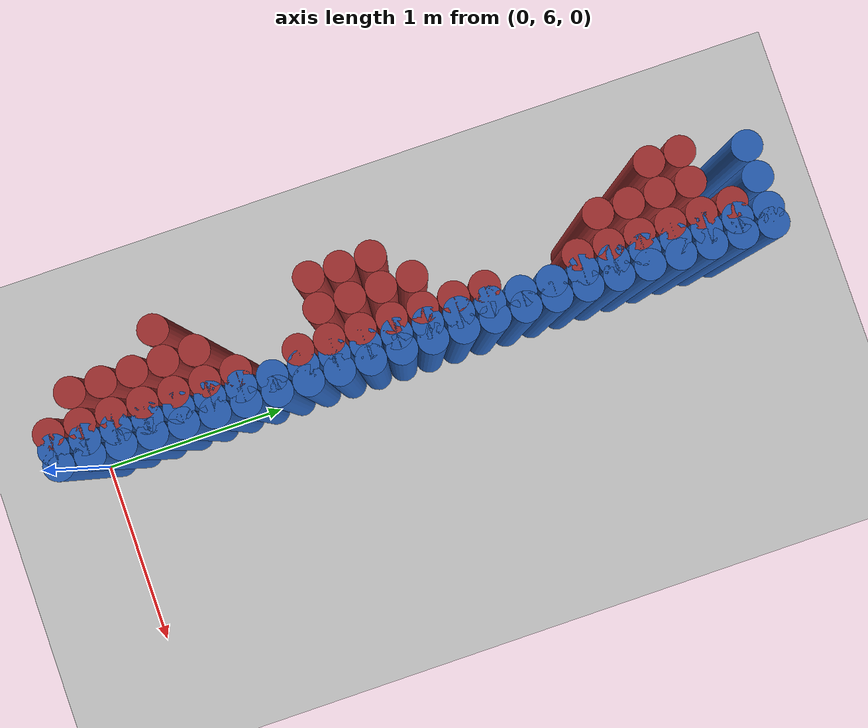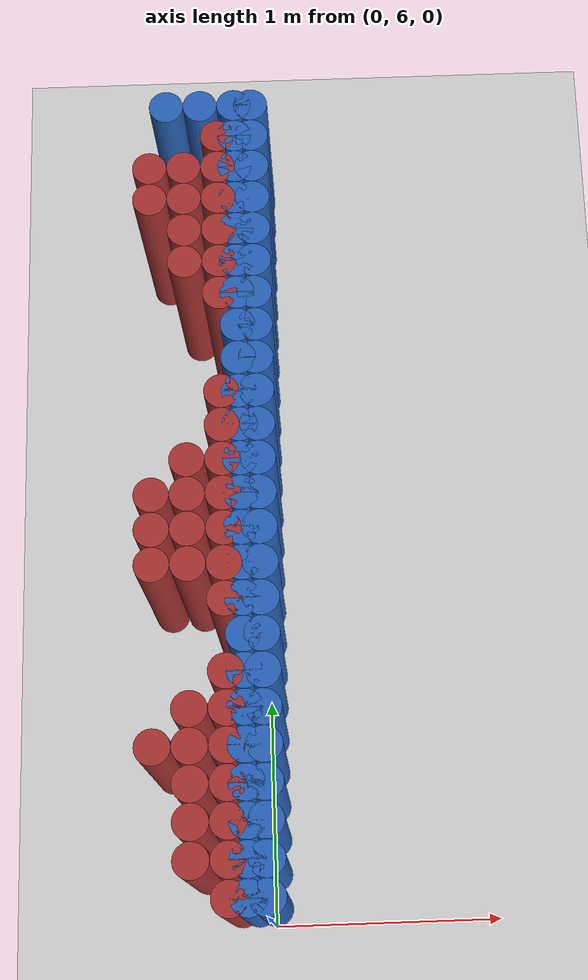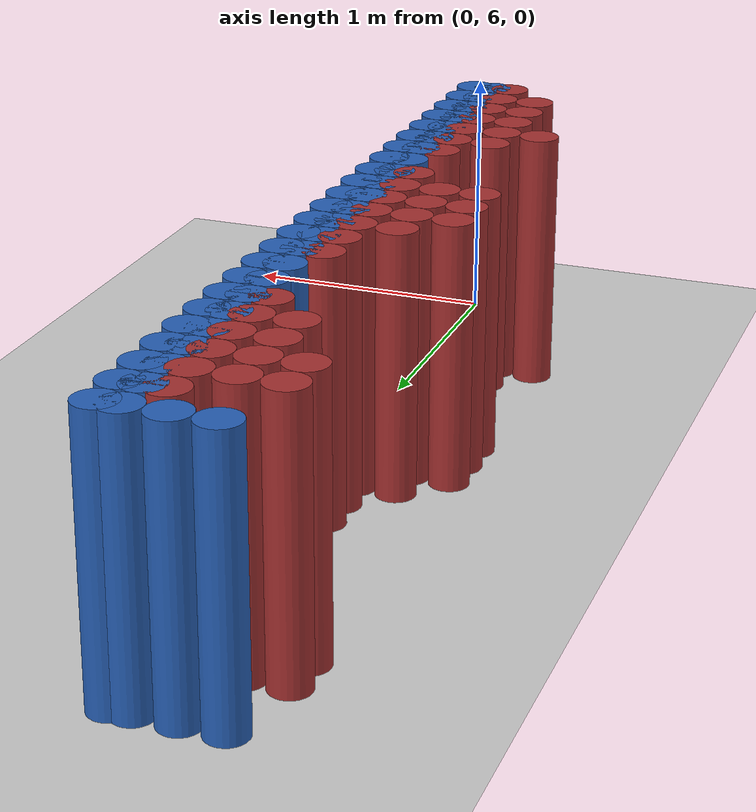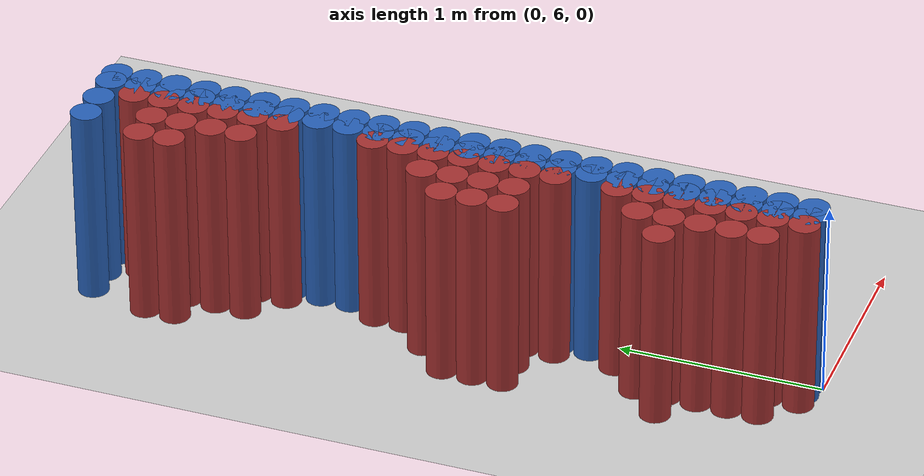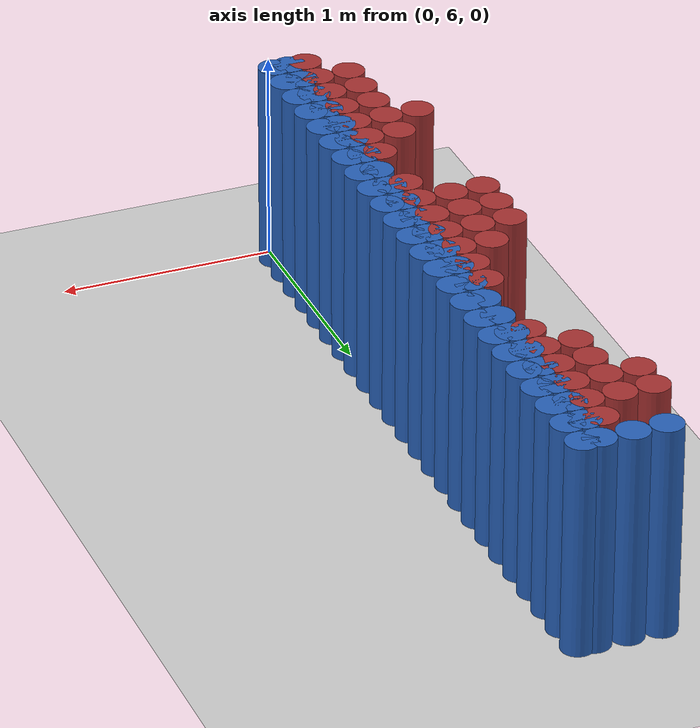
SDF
<sdf version="1.6">
 <world name="barn_world">
  <model name="ground_plane">
   <static>1</static>
   <link name="link">
    <collision name="collision">
     <geometry><plane><normal>0 0 1</normal><size>100 100</size></plane></geometry>
    </collision>
    <visual name="visual">
     <geometry><plane><normal>0 0 1</normal><size>100 100</size></plane></geometry>
     <material>
      <script><uri>file://media/materials/scripts/gazebo.material</uri><name>Gazebo/Grey</name></script>
     </material>
    </visual>
   </link>
  </model>
  <model name="unit_cylinder_285">
   <static>1</static>
   <pose>-0.4500 6.6750 0.5 0 0 0</pose>
   <link name="link">
    <collision name="collision">
     <geometry><cylinder><radius>0.075</radius><length>1</length></cylinder></geometry>
    </collision>
    <visual name="visual">
     <geometry><cylinder><radius>0.075</radius><length>1</length></cylinder></geometry>
     <material><ambient>0.648 0.192 0.192 1</ambient><diffuse>0.648 0.192 0.192 1</diffuse></material>
    </visual>
   </link>
  </model>
  <model name="unit_cylinder_286">
   <static>1</static>
   <pose>-0.4500 7.4250 0.5 0 0 0</pose>
   <link name="link">
    <collision name="collision">
     <geometry><cylinder><radius>0.075</radius><length>1</length></cylinder></geometry>
    </collision>
    <visual name="visual">
     <geometry><cylinder><radius>0.075</radius><length>1</length></cylinder></geometry>
     <material><ambient>0.648 0.192 0.192 1</ambient><diffuse>0.648 0.192 0.192 1</diffuse></material>
    </visual>
   </link>
  </model>
  <model name="unit_cylinder_287">
   <static>1</static>
   <pose>-0.4500 7.5750 0.5 0 0 0</pose>
   <link name="link">
    <collision name="collision">
     <geometry><cylinder><radius>0.075</radius><length>1</length></cylinder></geometry>
    </collision>
    <visual name="visual">
     <geometry><cylinder><radius>0.075</radius><length>1</length></cylinder></geometry>
     <material><ambient>0.648 0.192 0.192 1</ambient><diffuse>0.648 0.192 0.192 1</diffuse></material>
    </visual>
   </link>
  </model>
  <model name="unit_cylinder_288">
   <static>1</static>
   <pose>-0.4500 7.7250 0.5 0 0 0</pose>
   <link name="link">
    <collision name="collision">
     <geometry><cylinder><radius>0.075</radius><length>1</length></cylinder></geometry>
    </collision>
    <visual name="visual">
     <geometry><cylinder><radius>0.075</radius><length>1</length></cylinder></geometry>
     <material><ambient>0.648 0.192 0.192 1</ambient><diffuse>0.648 0.192 0.192 1</diffuse></material>
    </visual>
   </link>
  </model>
  <model name="unit_cylinder_289">
   <static>1</static>
   <pose>-0.4500 9.0750 0.5 0 0 0</pose>
   <link name="link">
    <collision name="collision">
     <geometry><cylinder><radius>0.075</radius><length>1</length></cylinder></geometry>
    </collision>
    <visual name="visual">
     <geometry><cylinder><radius>0.075</radius><length>1</length></cylinder></geometry>
     <material><ambient>0.648 0.192 0.192 1</ambient><diffuse>0.648 0.192 0.192 1</diffuse></material>
    </visual>
   </link>
  </model>
  <model name="unit_cylinder_290">
   <static>1</static>
   <pose>-0.4500 9.2250 0.5 0 0 0</pose>
   <link name="link">
    <collision name="collision">
     <geometry><cylinder><radius>0.075</radius><length>1</length></cylinder></geometry>
    </collision>
    <visual name="visual">
     <geometry><cylinder><radius>0.075</radius><length>1</length></cylinder></geometry>
     <material><ambient>0.648 0.192 0.192 1</ambient><diffuse>0.648 0.192 0.192 1</diffuse></material>
    </visual>
   </link>
  </model>
  <model name="unit_cylinder_291">
   <static>1</static>
   <pose>-0.3000 6.2250 0.5 0 0 0</pose>
   <link name="link">
    <collision name="collision">
     <geometry><cylinder><radius>0.075</radius><length>1</length></cylinder></geometry>
    </collision>
    <visual name="visual">
     <geometry><cylinder><radius>0.075</radius><length>1</length></cylinder></geometry>
     <material><ambient>0.648 0.192 0.192 1</ambient><diffuse>0.648 0.192 0.192 1</diffuse></material>
    </visual>
   </link>
  </model>
  <model name="unit_cylinder_292">
   <static>1</static>
   <pose>-0.3000 6.3750 0.5 0 0 0</pose>
   <link name="link">
    <collision name="collision">
     <geometry><cylinder><radius>0.075</radius><length>1</length></cylinder></geometry>
    </collision>
    <visual name="visual">
     <geometry><cylinder><radius>0.075</radius><length>1</length></cylinder></geometry>
     <material><ambient>0.648 0.192 0.192 1</ambient><diffuse>0.648 0.192 0.192 1</diffuse></material>
    </visual>
   </link>
  </model>
  <model name="unit_cylinder_293">
   <static>1</static>
   <pose>-0.3000 6.5250 0.5 0 0 0</pose>
   <link name="link">
    <collision name="collision">
     <geometry><cylinder><radius>0.075</radius><length>1</length></cylinder></geometry>
    </collision>
    <visual name="visual">
     <geometry><cylinder><radius>0.075</radius><length>1</length></cylinder></geometry>
     <material><ambient>0.648 0.192 0.192 1</ambient><diffuse>0.648 0.192 0.192 1</diffuse></material>
    </visual>
   </link>
  </model>
  <model name="unit_cylinder_294">
   <static>1</static>
   <pose>-0.3000 6.6750 0.5 0 0 0</pose>
   <link name="link">
    <collision name="collision">
     <geometry><cylinder><radius>0.075</radius><length>1</length></cylinder></geometry>
    </collision>
    <visual name="visual">
     <geometry><cylinder><radius>0.075</radius><length>1</length></cylinder></geometry>
     <material><ambient>0.648 0.192 0.192 1</ambient><diffuse>0.648 0.192 0.192 1</diffuse></material>
    </visual>
   </link>
  </model>
  <model name="unit_cylinder_295">
   <static>1</static>
   <pose>-0.3000 6.8250 0.5 0 0 0</pose>
   <link name="link">
    <collision name="collision">
     <geometry><cylinder><radius>0.075</radius><length>1</length></cylinder></geometry>
    </collision>
    <visual name="visual">
     <geometry><cylinder><radius>0.075</radius><length>1</length></cylinder></geometry>
     <material><ambient>0.648 0.192 0.192 1</ambient><diffuse>0.648 0.192 0.192 1</diffuse></material>
    </visual>
   </link>
  </model>
  <model name="unit_cylinder_296">
   <static>1</static>
   <pose>-0.3000 7.4250 0.5 0 0 0</pose>
   <link name="link">
    <collision name="collision">
     <geometry><cylinder><radius>0.075</radius><length>1</length></cylinder></geometry>
    </collision>
    <visual name="visual">
     <geometry><cylinder><radius>0.075</radius><length>1</length></cylinder></geometry>
     <material><ambient>0.648 0.192 0.192 1</ambient><diffuse>0.648 0.192 0.192 1</diffuse></material>
    </visual>
   </link>
  </model>
  <model name="unit_cylinder_297">
   <static>1</static>
   <pose>-0.3000 7.5750 0.5 0 0 0</pose>
   <link name="link">
    <collision name="collision">
     <geometry><cylinder><radius>0.075</radius><length>1</length></cylinder></geometry>
    </collision>
    <visual name="visual">
     <geometry><cylinder><radius>0.075</radius><length>1</length></cylinder></geometry>
     <material><ambient>0.648 0.192 0.192 1</ambient><diffuse>0.648 0.192 0.192 1</diffuse></material>
    </visual>
   </link>
  </model>
  <model name="unit_cylinder_298">
   <static>1</static>
   <pose>-0.3000 7.7250 0.5 0 0 0</pose>
   <link name="link">
    <collision name="collision">
     <geometry><cylinder><radius>0.075</radius><length>1</length></cylinder></geometry>
    </collision>
    <visual name="visual">
     <geometry><cylinder><radius>0.075</radius><length>1</length></cylinder></geometry>
     <material><ambient>0.648 0.192 0.192 1</ambient><diffuse>0.648 0.192 0.192 1</diffuse></material>
    </visual>
   </link>
  </model>
  <model name="unit_cylinder_299">
   <static>1</static>
   <pose>-0.3000 7.8750 0.5 0 0 0</pose>
   <link name="link">
    <collision name="collision">
     <geometry><cylinder><radius>0.075</radius><length>1</length></cylinder></geometry>
    </collision>
    <visual name="visual">
     <geometry><cylinder><radius>0.075</radius><length>1</length></cylinder></geometry>
     <material><ambient>0.648 0.192 0.192 1</ambient><diffuse>0.648 0.192 0.192 1</diffuse></material>
    </visual>
   </link>
  </model>
  <model name="unit_cylinder_300">
   <static>1</static>
   <pose>-0.3000 8.7750 0.5 0 0 0</pose>
   <link name="link">
    <collision name="collision">
     <geometry><cylinder><radius>0.075</radius><length>1</length></cylinder></geometry>
    </collision>
    <visual name="visual">
     <geometry><cylinder><radius>0.075</radius><length>1</length></cylinder></geometry>
     <material><ambient>0.648 0.192 0.192 1</ambient><diffuse>0.648 0.192 0.192 1</diffuse></material>
    </visual>
   </link>
  </model>
  <model name="unit_cylinder_301">
   <static>1</static>
   <pose>-0.3000 8.9250 0.5 0 0 0</pose>
   <link name="link">
    <collision name="collision">
     <geometry><cylinder><radius>0.075</radius><length>1</length></cylinder></geometry>
    </collision>
    <visual name="visual">
     <geometry><cylinder><radius>0.075</radius><length>1</length></cylinder></geometry>
     <material><ambient>0.648 0.192 0.192 1</ambient><diffuse>0.648 0.192 0.192 1</diffuse></material>
    </visual>
   </link>
  </model>
  <model name="unit_cylinder_302">
   <static>1</static>
   <pose>-0.3000 9.0750 0.5 0 0 0</pose>
   <link name="link">
    <collision name="collision">
     <geometry><cylinder><radius>0.075</radius><length>1</length></cylinder></geometry>
    </collision>
    <visual name="visual">
     <geometry><cylinder><radius>0.075</radius><length>1</length></cylinder></geometry>
     <material><ambient>0.648 0.192 0.192 1</ambient><diffuse>0.648 0.192 0.192 1</diffuse></material>
    </visual>
   </link>
  </model>
  <model name="unit_cylinder_303">
   <static>1</static>
   <pose>-0.3000 9.2250 0.5 0 0 0</pose>
   <link name="link">
    <collision name="collision">
     <geometry><cylinder><radius>0.075</radius><length>1</length></cylinder></geometry>
    </collision>
    <visual name="visual">
     <geometry><cylinder><radius>0.075</radius><length>1</length></cylinder></geometry>
     <material><ambient>0.648 0.192 0.192 1</ambient><diffuse>0.648 0.192 0.192 1</diffuse></material>
    </visual>
   </link>
  </model>
  <model name="unit_cylinder_305">
   <static>1</static>
   <pose>-0.1500 6.0750 0.5 0 0 0</pose>
   <link name="link">
    <collision name="collision">
     <geometry><cylinder><radius>0.075</radius><length>1</length></cylinder></geometry>
    </collision>
    <visual name="visual">
     <geometry><cylinder><radius>0.075</radius><length>1</length></cylinder></geometry>
     <material><ambient>0.648 0.192 0.192 1</ambient><diffuse>0.648 0.192 0.192 1</diffuse></material>
    </visual>
   </link>
  </model>
  <model name="unit_cylinder_306">
   <static>1</static>
   <pose>-0.1500 6.2250 0.5 0 0 0</pose>
   <link name="link">
    <collision name="collision">
     <geometry><cylinder><radius>0.075</radius><length>1</length></cylinder></geometry>
    </collision>
    <visual name="visual">
     <geometry><cylinder><radius>0.075</radius><length>1</length></cylinder></geometry>
     <material><ambient>0.648 0.192 0.192 1</ambient><diffuse>0.648 0.192 0.192 1</diffuse></material>
    </visual>
   </link>
  </model>
  <model name="unit_cylinder_307">
   <static>1</static>
   <pose>-0.1500 6.3750 0.5 0 0 0</pose>
   <link name="link">
    <collision name="collision">
     <geometry><cylinder><radius>0.075</radius><length>1</length></cylinder></geometry>
    </collision>
    <visual name="visual">
     <geometry><cylinder><radius>0.075</radius><length>1</length></cylinder></geometry>
     <material><ambient>0.648 0.192 0.192 1</ambient><diffuse>0.648 0.192 0.192 1</diffuse></material>
    </visual>
   </link>
  </model>
  <model name="unit_cylinder_308">
   <static>1</static>
   <pose>-0.1500 6.5250 0.5 0 0 0</pose>
   <link name="link">
    <collision name="collision">
     <geometry><cylinder><radius>0.075</radius><length>1</length></cylinder></geometry>
    </collision>
    <visual name="visual">
     <geometry><cylinder><radius>0.075</radius><length>1</length></cylinder></geometry>
     <material><ambient>0.648 0.192 0.192 1</ambient><diffuse>0.648 0.192 0.192 1</diffuse></material>
    </visual>
   </link>
  </model>
  <model name="unit_cylinder_309">
   <static>1</static>
   <pose>-0.1500 6.6750 0.5 0 0 0</pose>
   <link name="link">
    <collision name="collision">
     <geometry><cylinder><radius>0.075</radius><length>1</length></cylinder></geometry>
    </collision>
    <visual name="visual">
     <geometry><cylinder><radius>0.075</radius><length>1</length></cylinder></geometry>
     <material><ambient>0.648 0.192 0.192 1</ambient><diffuse>0.648 0.192 0.192 1</diffuse></material>
    </visual>
   </link>
  </model>
  <model name="unit_cylinder_310">
   <static>1</static>
   <pose>-0.1500 6.8250 0.5 0 0 0</pose>
   <link name="link">
    <collision name="collision">
     <geometry><cylinder><radius>0.075</radius><length>1</length></cylinder></geometry>
    </collision>
    <visual name="visual">
     <geometry><cylinder><radius>0.075</radius><length>1</length></cylinder></geometry>
     <material><ambient>0.648 0.192 0.192 1</ambient><diffuse>0.648 0.192 0.192 1</diffuse></material>
    </visual>
   </link>
  </model>
  <model name="unit_cylinder_311">
   <static>1</static>
   <pose>-0.1500 6.9750 0.5 0 0 0</pose>
   <link name="link">
    <collision name="collision">
     <geometry><cylinder><radius>0.075</radius><length>1</length></cylinder></geometry>
    </collision>
    <visual name="visual">
     <geometry><cylinder><radius>0.075</radius><length>1</length></cylinder></geometry>
     <material><ambient>0.648 0.192 0.192 1</ambient><diffuse>0.648 0.192 0.192 1</diffuse></material>
    </visual>
   </link>
  </model>
  <model name="unit_cylinder_312">
   <static>1</static>
   <pose>-0.1500 7.2750 0.5 0 0 0</pose>
   <link name="link">
    <collision name="collision">
     <geometry><cylinder><radius>0.075</radius><length>1</length></cylinder></geometry>
    </collision>
    <visual name="visual">
     <geometry><cylinder><radius>0.075</radius><length>1</length></cylinder></geometry>
     <material><ambient>0.648 0.192 0.192 1</ambient><diffuse>0.648 0.192 0.192 1</diffuse></material>
    </visual>
   </link>
  </model>
  <model name="unit_cylinder_313">
   <static>1</static>
   <pose>-0.1500 7.4250 0.5 0 0 0</pose>
   <link name="link">
    <collision name="collision">
     <geometry><cylinder><radius>0.075</radius><length>1</length></cylinder></geometry>
    </collision>
    <visual name="visual">
     <geometry><cylinder><radius>0.075</radius><length>1</length></cylinder></geometry>
     <material><ambient>0.648 0.192 0.192 1</ambient><diffuse>0.648 0.192 0.192 1</diffuse></material>
    </visual>
   </link>
  </model>
  <model name="unit_cylinder_314">
   <static>1</static>
   <pose>-0.1500 7.5750 0.5 0 0 0</pose>
   <link name="link">
    <collision name="collision">
     <geometry><cylinder><radius>0.075</radius><length>1</length></cylinder></geometry>
    </collision>
    <visual name="visual">
     <geometry><cylinder><radius>0.075</radius><length>1</length></cylinder></geometry>
     <material><ambient>0.648 0.192 0.192 1</ambient><diffuse>0.648 0.192 0.192 1</diffuse></material>
    </visual>
   </link>
  </model>
  <model name="unit_cylinder_315">
   <static>1</static>
   <pose>-0.1500 7.7250 0.5 0 0 0</pose>
   <link name="link">
    <collision name="collision">
     <geometry><cylinder><radius>0.075</radius><length>1</length></cylinder></geometry>
    </collision>
    <visual name="visual">
     <geometry><cylinder><radius>0.075</radius><length>1</length></cylinder></geometry>
     <material><ambient>0.648 0.192 0.192 1</ambient><diffuse>0.648 0.192 0.192 1</diffuse></material>
    </visual>
   </link>
  </model>
  <model name="unit_cylinder_316">
   <static>1</static>
   <pose>-0.1500 7.8750 0.5 0 0 0</pose>
   <link name="link">
    <collision name="collision">
     <geometry><cylinder><radius>0.075</radius><length>1</length></cylinder></geometry>
    </collision>
    <visual name="visual">
     <geometry><cylinder><radius>0.075</radius><length>1</length></cylinder></geometry>
     <material><ambient>0.648 0.192 0.192 1</ambient><diffuse>0.648 0.192 0.192 1</diffuse></material>
    </visual>
   </link>
  </model>
  <model name="unit_cylinder_317">
   <static>1</static>
   <pose>-0.1500 8.0250 0.5 0 0 0</pose>
   <link name="link">
    <collision name="collision">
     <geometry><cylinder><radius>0.075</radius><length>1</length></cylinder></geometry>
    </collision>
    <visual name="visual">
     <geometry><cylinder><radius>0.075</radius><length>1</length></cylinder></geometry>
     <material><ambient>0.648 0.192 0.192 1</ambient><diffuse>0.648 0.192 0.192 1</diffuse></material>
    </visual>
   </link>
  </model>
  <model name="unit_cylinder_318">
   <static>1</static>
   <pose>-0.1500 8.1750 0.5 0 0 0</pose>
   <link name="link">
    <collision name="collision">
     <geometry><cylinder><radius>0.075</radius><length>1</length></cylinder></geometry>
    </collision>
    <visual name="visual">
     <geometry><cylinder><radius>0.075</radius><length>1</length></cylinder></geometry>
     <material><ambient>0.648 0.192 0.192 1</ambient><diffuse>0.648 0.192 0.192 1</diffuse></material>
    </visual>
   </link>
  </model>
  <model name="unit_cylinder_319">
   <static>1</static>
   <pose>-0.1500 8.6250 0.5 0 0 0</pose>
   <link name="link">
    <collision name="collision">
     <geometry><cylinder><radius>0.075</radius><length>1</length></cylinder></geometry>
    </collision>
    <visual name="visual">
     <geometry><cylinder><radius>0.075</radius><length>1</length></cylinder></geometry>
     <material><ambient>0.648 0.192 0.192 1</ambient><diffuse>0.648 0.192 0.192 1</diffuse></material>
    </visual>
   </link>
  </model>
  <model name="unit_cylinder_320">
   <static>1</static>
   <pose>-0.1500 8.7750 0.5 0 0 0</pose>
   <link name="link">
    <collision name="collision">
     <geometry><cylinder><radius>0.075</radius><length>1</length></cylinder></geometry>
    </collision>
    <visual name="visual">
     <geometry><cylinder><radius>0.075</radius><length>1</length></cylinder></geometry>
     <material><ambient>0.648 0.192 0.192 1</ambient><diffuse>0.648 0.192 0.192 1</diffuse></material>
    </visual>
   </link>
  </model>
  <model name="unit_cylinder_321">
   <static>1</static>
   <pose>-0.1500 8.9250 0.5 0 0 0</pose>
   <link name="link">
    <collision name="collision">
     <geometry><cylinder><radius>0.075</radius><length>1</length></cylinder></geometry>
    </collision>
    <visual name="visual">
     <geometry><cylinder><radius>0.075</radius><length>1</length></cylinder></geometry>
     <material><ambient>0.648 0.192 0.192 1</ambient><diffuse>0.648 0.192 0.192 1</diffuse></material>
    </visual>
   </link>
  </model>
  <model name="unit_cylinder_322">
   <static>1</static>
   <pose>-0.1500 9.0750 0.5 0 0 0</pose>
   <link name="link">
    <collision name="collision">
     <geometry><cylinder><radius>0.075</radius><length>1</length></cylinder></geometry>
    </collision>
    <visual name="visual">
     <geometry><cylinder><radius>0.075</radius><length>1</length></cylinder></geometry>
     <material><ambient>0.648 0.192 0.192 1</ambient><diffuse>0.648 0.192 0.192 1</diffuse></material>
    </visual>
   </link>
  </model>
  <model name="unit_cylinder_323">
   <static>1</static>
   <pose>-0.1500 9.2250 0.5 0 0 0</pose>
   <link name="link">
    <collision name="collision">
     <geometry><cylinder><radius>0.075</radius><length>1</length></cylinder></geometry>
    </collision>
    <visual name="visual">
     <geometry><cylinder><radius>0.075</radius><length>1</length></cylinder></geometry>
     <material><ambient>0.648 0.192 0.192 1</ambient><diffuse>0.648 0.192 0.192 1</diffuse></material>
    </visual>
   </link>
  </model>
  <model name="unit_cylinder_324">
   <static>1</static>
   <pose>-0.1500 9.3750 0.5 0 0 0</pose>
   <link name="link">
    <collision name="collision">
     <geometry><cylinder><radius>0.075</radius><length>1</length></cylinder></geometry>
    </collision>
    <visual name="visual">
     <geometry><cylinder><radius>0.075</radius><length>1</length></cylinder></geometry>
     <material><ambient>0.648 0.192 0.192 1</ambient><diffuse>0.648 0.192 0.192 1</diffuse></material>
    </visual>
   </link>
  </model>
  <model name="unit_cylinder_331">
   <static>1</static>
   <pose>0.0000 6.0750 0.5 0 0 0</pose>
   <link name="link">
    <collision name="collision">
     <geometry><cylinder><radius>0.075</radius><length>1</length></cylinder></geometry>
    </collision>
    <visual name="visual">
     <geometry><cylinder><radius>0.075</radius><length>1</length></cylinder></geometry>
     <material><ambient>0.152 0.379 0.72 1</ambient><diffuse>0.152 0.379 0.72 1</diffuse></material>
    </visual>
   </link>
  </model>
  <model name="unit_cylinder_332">
   <static>1</static>
   <pose>0.0000 6.2250 0.5 0 0 0</pose>
   <link name="link">
    <collision name="collision">
     <geometry><cylinder><radius>0.075</radius><length>1</length></cylinder></geometry>
    </collision>
    <visual name="visual">
     <geometry><cylinder><radius>0.075</radius><length>1</length></cylinder></geometry>
     <material><ambient>0.152 0.379 0.72 1</ambient><diffuse>0.152 0.379 0.72 1</diffuse></material>
    </visual>
   </link>
  </model>
  <model name="unit_cylinder_333">
   <static>1</static>
   <pose>0.0000 6.3750 0.5 0 0 0</pose>
   <link name="link">
    <collision name="collision">
     <geometry><cylinder><radius>0.075</radius><length>1</length></cylinder></geometry>
    </collision>
    <visual name="visual">
     <geometry><cylinder><radius>0.075</radius><length>1</length></cylinder></geometry>
     <material><ambient>0.152 0.379 0.72 1</ambient><diffuse>0.152 0.379 0.72 1</diffuse></material>
    </visual>
   </link>
  </model>
  <model name="unit_cylinder_334">
   <static>1</static>
   <pose>0.0000 6.5250 0.5 0 0 0</pose>
   <link name="link">
    <collision name="collision">
     <geometry><cylinder><radius>0.075</radius><length>1</length></cylinder></geometry>
    </collision>
    <visual name="visual">
     <geometry><cylinder><radius>0.075</radius><length>1</length></cylinder></geometry>
     <material><ambient>0.152 0.379 0.72 1</ambient><diffuse>0.152 0.379 0.72 1</diffuse></material>
    </visual>
   </link>
  </model>
  <model name="unit_cylinder_335">
   <static>1</static>
   <pose>0.0000 6.6750 0.5 0 0 0</pose>
   <link name="link">
    <collision name="collision">
     <geometry><cylinder><radius>0.075</radius><length>1</length></cylinder></geometry>
    </collision>
    <visual name="visual">
     <geometry><cylinder><radius>0.075</radius><length>1</length></cylinder></geometry>
     <material><ambient>0.152 0.379 0.72 1</ambient><diffuse>0.152 0.379 0.72 1</diffuse></material>
    </visual>
   </link>
  </model>
  <model name="unit_cylinder_336">
   <static>1</static>
   <pose>0.0000 6.8250 0.5 0 0 0</pose>
   <link name="link">
    <collision name="collision">
     <geometry><cylinder><radius>0.075</radius><length>1</length></cylinder></geometry>
    </collision>
    <visual name="visual">
     <geometry><cylinder><radius>0.075</radius><length>1</length></cylinder></geometry>
     <material><ambient>0.152 0.379 0.72 1</ambient><diffuse>0.152 0.379 0.72 1</diffuse></material>
    </visual>
   </link>
  </model>
  <model name="unit_cylinder_337">
   <static>1</static>
   <pose>0.0000 6.9750 0.5 0 0 0</pose>
   <link name="link">
    <collision name="collision">
     <geometry><cylinder><radius>0.075</radius><length>1</length></cylinder></geometry>
    </collision>
    <visual name="visual">
     <geometry><cylinder><radius>0.075</radius><length>1</length></cylinder></geometry>
     <material><ambient>0.152 0.379 0.72 1</ambient><diffuse>0.152 0.379 0.72 1</diffuse></material>
    </visual>
   </link>
  </model>
  <model name="unit_cylinder_338">
   <static>1</static>
   <pose>0.0000 7.1250 0.5 0 0 0</pose>
   <link name="link">
    <collision name="collision">
     <geometry><cylinder><radius>0.075</radius><length>1</length></cylinder></geometry>
    </collision>
    <visual name="visual">
     <geometry><cylinder><radius>0.075</radius><length>1</length></cylinder></geometry>
     <material><ambient>0.152 0.379 0.72 1</ambient><diffuse>0.152 0.379 0.72 1</diffuse></material>
    </visual>
   </link>
  </model>
  <model name="unit_cylinder_339">
   <static>1</static>
   <pose>0.0000 7.2750 0.5 0 0 0</pose>
   <link name="link">
    <collision name="collision">
     <geometry><cylinder><radius>0.075</radius><length>1</length></cylinder></geometry>
    </collision>
    <visual name="visual">
     <geometry><cylinder><radius>0.075</radius><length>1</length></cylinder></geometry>
     <material><ambient>0.152 0.379 0.72 1</ambient><diffuse>0.152 0.379 0.72 1</diffuse></material>
    </visual>
   </link>
  </model>
  <model name="unit_cylinder_340">
   <static>1</static>
   <pose>0.0000 7.4250 0.5 0 0 0</pose>
   <link name="link">
    <collision name="collision">
     <geometry><cylinder><radius>0.075</radius><length>1</length></cylinder></geometry>
    </collision>
    <visual name="visual">
     <geometry><cylinder><radius>0.075</radius><length>1</length></cylinder></geometry>
     <material><ambient>0.152 0.379 0.72 1</ambient><diffuse>0.152 0.379 0.72 1</diffuse></material>
    </visual>
   </link>
  </model>
  <model name="unit_cylinder_341">
   <static>1</static>
   <pose>0.0000 7.5750 0.5 0 0 0</pose>
   <link name="link">
    <collision name="collision">
     <geometry><cylinder><radius>0.075</radius><length>1</length></cylinder></geometry>
    </collision>
    <visual name="visual">
     <geometry><cylinder><radius>0.075</radius><length>1</length></cylinder></geometry>
     <material><ambient>0.152 0.379 0.72 1</ambient><diffuse>0.152 0.379 0.72 1</diffuse></material>
    </visual>
   </link>
  </model>
  <model name="unit_cylinder_342">
   <static>1</static>
   <pose>0.0000 7.7250 0.5 0 0 0</pose>
   <link name="link">
    <collision name="collision">
     <geometry><cylinder><radius>0.075</radius><length>1</length></cylinder></geometry>
    </collision>
    <visual name="visual">
     <geometry><cylinder><radius>0.075</radius><length>1</length></cylinder></geometry>
     <material><ambient>0.152 0.379 0.72 1</ambient><diffuse>0.152 0.379 0.72 1</diffuse></material>
    </visual>
   </link>
  </model>
  <model name="unit_cylinder_343">
   <static>1</static>
   <pose>0.0000 7.8750 0.5 0 0 0</pose>
   <link name="link">
    <collision name="collision">
     <geometry><cylinder><radius>0.075</radius><length>1</length></cylinder></geometry>
    </collision>
    <visual name="visual">
     <geometry><cylinder><radius>0.075</radius><length>1</length></cylinder></geometry>
     <material><ambient>0.152 0.379 0.72 1</ambient><diffuse>0.152 0.379 0.72 1</diffuse></material>
    </visual>
   </link>
  </model>
  <model name="unit_cylinder_344">
   <static>1</static>
   <pose>0.0000 8.0250 0.5 0 0 0</pose>
   <link name="link">
    <collision name="collision">
     <geometry><cylinder><radius>0.075</radius><length>1</length></cylinder></geometry>
    </collision>
    <visual name="visual">
     <geometry><cylinder><radius>0.075</radius><length>1</length></cylinder></geometry>
     <material><ambient>0.152 0.379 0.72 1</ambient><diffuse>0.152 0.379 0.72 1</diffuse></material>
    </visual>
   </link>
  </model>
  <model name="unit_cylinder_345">
   <static>1</static>
   <pose>0.0000 8.1750 0.5 0 0 0</pose>
   <link name="link">
    <collision name="collision">
     <geometry><cylinder><radius>0.075</radius><length>1</length></cylinder></geometry>
    </collision>
    <visual name="visual">
     <geometry><cylinder><radius>0.075</radius><length>1</length></cylinder></geometry>
     <material><ambient>0.152 0.379 0.72 1</ambient><diffuse>0.152 0.379 0.72 1</diffuse></material>
    </visual>
   </link>
  </model>
  <model name="unit_cylinder_346">
   <static>1</static>
   <pose>0.0000 8.3250 0.5 0 0 0</pose>
   <link name="link">
    <collision name="collision">
     <geometry><cylinder><radius>0.075</radius><length>1</length></cylinder></geometry>
    </collision>
    <visual name="visual">
     <geometry><cylinder><radius>0.075</radius><length>1</length></cylinder></geometry>
     <material><ambient>0.152 0.379 0.72 1</ambient><diffuse>0.152 0.379 0.72 1</diffuse></material>
    </visual>
   </link>
  </model>
  <model name="unit_cylinder_347">
   <static>1</static>
   <pose>0.0000 8.4750 0.5 0 0 0</pose>
   <link name="link">
    <collision name="collision">
     <geometry><cylinder><radius>0.075</radius><length>1</length></cylinder></geometry>
    </collision>
    <visual name="visual">
     <geometry><cylinder><radius>0.075</radius><length>1</length></cylinder></geometry>
     <material><ambient>0.152 0.379 0.72 1</ambient><diffuse>0.152 0.379 0.72 1</diffuse></material>
    </visual>
   </link>
  </model>
  <model name="unit_cylinder_348">
   <static>1</static>
   <pose>0.0000 8.6250 0.5 0 0 0</pose>
   <link name="link">
    <collision name="collision">
     <geometry><cylinder><radius>0.075</radius><length>1</length></cylinder></geometry>
    </collision>
    <visual name="visual">
     <geometry><cylinder><radius>0.075</radius><length>1</length></cylinder></geometry>
     <material><ambient>0.152 0.379 0.72 1</ambient><diffuse>0.152 0.379 0.72 1</diffuse></material>
    </visual>
   </link>
  </model>
  <model name="unit_cylinder_349">
   <static>1</static>
   <pose>0.0000 8.7750 0.5 0 0 0</pose>
   <link name="link">
    <collision name="collision">
     <geometry><cylinder><radius>0.075</radius><length>1</length></cylinder></geometry>
    </collision>
    <visual name="visual">
     <geometry><cylinder><radius>0.075</radius><length>1</length></cylinder></geometry>
     <material><ambient>0.152 0.379 0.72 1</ambient><diffuse>0.152 0.379 0.72 1</diffuse></material>
    </visual>
   </link>
  </model>
  <model name="unit_cylinder_350">
   <static>1</static>
   <pose>0.0000 8.9250 0.5 0 0 0</pose>
   <link name="link">
    <collision name="collision">
     <geometry><cylinder><radius>0.075</radius><length>1</length></cylinder></geometry>
    </collision>
    <visual name="visual">
     <geometry><cylinder><radius>0.075</radius><length>1</length></cylinder></geometry>
     <material><ambient>0.152 0.379 0.72 1</ambient><diffuse>0.152 0.379 0.72 1</diffuse></material>
    </visual>
   </link>
  </model>
  <model name="unit_cylinder_351">
   <static>1</static>
   <pose>0.0000 9.0750 0.5 0 0 0</pose>
   <link name="link">
    <collision name="collision">
     <geometry><cylinder><radius>0.075</radius><length>1</length></cylinder></geometry>
    </collision>
    <visual name="visual">
     <geometry><cylinder><radius>0.075</radius><length>1</length></cylinder></geometry>
     <material><ambient>0.152 0.379 0.72 1</ambient><diffuse>0.152 0.379 0.72 1</diffuse></material>
    </visual>
   </link>
  </model>
  <model name="unit_cylinder_352">
   <static>1</static>
   <pose>0.0000 9.2250 0.5 0 0 0</pose>
   <link name="link">
    <collision name="collision">
     <geometry><cylinder><radius>0.075</radius><length>1</length></cylinder></geometry>
    </collision>
    <visual name="visual">
     <geometry><cylinder><radius>0.075</radius><length>1</length></cylinder></geometry>
     <material><ambient>0.152 0.379 0.72 1</ambient><diffuse>0.152 0.379 0.72 1</diffuse></material>
    </visual>
   </link>
  </model>
  <model name="unit_cylinder_353">
   <static>1</static>
   <pose>0.0000 9.3750 0.5 0 0 0</pose>
   <link name="link">
    <collision name="collision">
     <geometry><cylinder><radius>0.075</radius><length>1</length></cylinder></geometry>
    </collision>
    <visual name="visual">
     <geometry><cylinder><radius>0.075</radius><length>1</length></cylinder></geometry>
     <material><ambient>0.152 0.379 0.72 1</ambient><diffuse>0.152 0.379 0.72 1</diffuse></material>
    </visual>
   </link>
  </model>
  <model name="unit_cylinder_354">
   <static>1</static>
   <pose>0.0000 9.5250 0.5 0 0 0</pose>
   <link name="link">
    <collision name="collision">
     <geometry><cylinder><radius>0.075</radius><length>1</length></cylinder></geometry>
    </collision>
    <visual name="visual">
     <geometry><cylinder><radius>0.075</radius><length>1</length></cylinder></geometry>
     <material><ambient>0.152 0.379 0.72 1</ambient><diffuse>0.152 0.379 0.72 1</diffuse></material>
    </visual>
   </link>
  </model>
  <model name="unit_cylinder_355">
   <static>1</static>
   <pose>-0.0750 9.5250 0.5 0 0 0</pose>
   <link name="link">
    <collision name="collision">
     <geometry><cylinder><radius>0.075</radius><length>1</length></cylinder></geometry>
    </collision>
    <visual name="visual">
     <geometry><cylinder><radius>0.075</radius><length>1</length></cylinder></geometry>
     <material><ambient>0.152 0.379 0.72 1</ambient><diffuse>0.152 0.379 0.72 1</diffuse></material>
    </visual>
   </link>
  </model>
  <model name="unit_cylinder_356">
   <static>1</static>
   <pose>-0.2250 9.5250 0.5 0 0 0</pose>
   <link name="link">
    <collision name="collision">
     <geometry><cylinder><radius>0.075</radius><length>1</length></cylinder></geometry>
    </collision>
    <visual name="visual">
     <geometry><cylinder><radius>0.075</radius><length>1</length></cylinder></geometry>
     <material><ambient>0.152 0.379 0.72 1</ambient><diffuse>0.152 0.379 0.72 1</diffuse></material>
    </visual>
   </link>
  </model>
  <model name="unit_cylinder_357">
   <static>1</static>
   <pose>-0.3750 9.5250 0.5 0 0 0</pose>
   <link name="link">
    <collision name="collision">
     <geometry><cylinder><radius>0.075</radius><length>1</length></cylinder></geometry>
    </collision>
    <visual name="visual">
     <geometry><cylinder><radius>0.075</radius><length>1</length></cylinder></geometry>
     <material><ambient>0.152 0.379 0.72 1</ambient><diffuse>0.152 0.379 0.72 1</diffuse></material>
    </visual>
   </link>
  </model>
  <model name="unit_cylinder_397">
   <static>1</static>
   <pose>-0.0750 6.0750 0.5 0 0 0</pose>
   <link name="link">
    <collision name="collision">
     <geometry><cylinder><radius>0.075</radius><length>1</length></cylinder></geometry>
    </collision>
    <visual name="visual">
     <geometry><cylinder><radius>0.075</radius><length>1</length></cylinder></geometry>
     <material><ambient>0.152 0.379 0.72 1</ambient><diffuse>0.152 0.379 0.72 1</diffuse></material>
    </visual>
   </link>
  </model>
  <model name="unit_cylinder_399">
   <static>1</static>
   <pose>-0.0750 6.2250 0.5 0 0 0</pose>
   <link name="link">
    <collision name="collision">
     <geometry><cylinder><radius>0.075</radius><length>1</length></cylinder></geometry>
    </collision>
    <visual name="visual">
     <geometry><cylinder><radius>0.075</radius><length>1</length></cylinder></geometry>
     <material><ambient>0.152 0.379 0.72 1</ambient><diffuse>0.152 0.379 0.72 1</diffuse></material>
    </visual>
   </link>
  </model>
  <model name="unit_cylinder_401">
   <static>1</static>
   <pose>-0.0750 6.3750 0.5 0 0 0</pose>
   <link name="link">
    <collision name="collision">
     <geometry><cylinder><radius>0.075</radius><length>1</length></cylinder></geometry>
    </collision>
    <visual name="visual">
     <geometry><cylinder><radius>0.075</radius><length>1</length></cylinder></geometry>
     <material><ambient>0.152 0.379 0.72 1</ambient><diffuse>0.152 0.379 0.72 1</diffuse></material>
    </visual>
   </link>
  </model>
  <model name="unit_cylinder_403">
   <static>1</static>
   <pose>-0.0750 6.5250 0.5 0 0 0</pose>
   <link name="link">
    <collision name="collision">
     <geometry><cylinder><radius>0.075</radius><length>1</length></cylinder></geometry>
    </collision>
    <visual name="visual">
     <geometry><cylinder><radius>0.075</radius><length>1</length></cylinder></geometry>
     <material><ambient>0.152 0.379 0.72 1</ambient><diffuse>0.152 0.379 0.72 1</diffuse></material>
    </visual>
   </link>
  </model>
  <model name="unit_cylinder_405">
   <static>1</static>
   <pose>-0.0750 6.6750 0.5 0 0 0</pose>
   <link name="link">
    <collision name="collision">
     <geometry><cylinder><radius>0.075</radius><length>1</length></cylinder></geometry>
    </collision>
    <visual name="visual">
     <geometry><cylinder><radius>0.075</radius><length>1</length></cylinder></geometry>
     <material><ambient>0.152 0.379 0.72 1</ambient><diffuse>0.152 0.379 0.72 1</diffuse></material>
    </visual>
   </link>
  </model>
  <model name="unit_cylinder_407">
   <static>1</static>
   <pose>-0.0750 6.8250 0.5 0 0 0</pose>
   <link name="link">
    <collision name="collision">
     <geometry><cylinder><radius>0.075</radius><length>1</length></cylinder></geometry>
    </collision>
    <visual name="visual">
     <geometry><cylinder><radius>0.075</radius><length>1</length></cylinder></geometry>
     <material><ambient>0.152 0.379 0.72 1</ambient><diffuse>0.152 0.379 0.72 1</diffuse></material>
    </visual>
   </link>
  </model>
  <model name="unit_cylinder_409">
   <static>1</static>
   <pose>-0.0750 6.9750 0.5 0 0 0</pose>
   <link name="link">
    <collision name="collision">
     <geometry><cylinder><radius>0.075</radius><length>1</length></cylinder></geometry>
    </collision>
    <visual name="visual">
     <geometry><cylinder><radius>0.075</radius><length>1</length></cylinder></geometry>
     <material><ambient>0.152 0.379 0.72 1</ambient><diffuse>0.152 0.379 0.72 1</diffuse></material>
    </visual>
   </link>
  </model>
  <model name="unit_cylinder_411">
   <static>1</static>
   <pose>-0.0750 7.1250 0.5 0 0 0</pose>
   <link name="link">
    <collision name="collision">
     <geometry><cylinder><radius>0.075</radius><length>1</length></cylinder></geometry>
    </collision>
    <visual name="visual">
     <geometry><cylinder><radius>0.075</radius><length>1</length></cylinder></geometry>
     <material><ambient>0.152 0.379 0.72 1</ambient><diffuse>0.152 0.379 0.72 1</diffuse></material>
    </visual>
   </link>
  </model>
  <model name="unit_cylinder_413">
   <static>1</static>
   <pose>-0.0750 7.2750 0.5 0 0 0</pose>
   <link name="link">
    <collision name="collision">
     <geometry><cylinder><radius>0.075</radius><length>1</length></cylinder></geometry>
    </collision>
    <visual name="visual">
     <geometry><cylinder><radius>0.075</radius><length>1</length></cylinder></geometry>
     <material><ambient>0.152 0.379 0.72 1</ambient><diffuse>0.152 0.379 0.72 1</diffuse></material>
    </visual>
   </link>
  </model>
  <model name="unit_cylinder_415">
   <static>1</static>
   <pose>-0.0750 7.4250 0.5 0 0 0</pose>
   <link name="link">
    <collision name="collision">
     <geometry><cylinder><radius>0.075</radius><length>1</length></cylinder></geometry>
    </collision>
    <visual name="visual">
     <geometry><cylinder><radius>0.075</radius><length>1</length></cylinder></geometry>
     <material><ambient>0.152 0.379 0.72 1</ambient><diffuse>0.152 0.379 0.72 1</diffuse></material>
    </visual>
   </link>
  </model>
  <model name="unit_cylinder_417">
   <static>1</static>
   <pose>-0.0750 7.5750 0.5 0 0 0</pose>
   <link name="link">
    <collision name="collision">
     <geometry><cylinder><radius>0.075</radius><length>1</length></cylinder></geometry>
    </collision>
    <visual name="visual">
     <geometry><cylinder><radius>0.075</radius><length>1</length></cylinder></geometry>
     <material><ambient>0.152 0.379 0.72 1</ambient><diffuse>0.152 0.379 0.72 1</diffuse></material>
    </visual>
   </link>
  </model>
  <model name="unit_cylinder_419">
   <static>1</static>
   <pose>-0.0750 7.7250 0.5 0 0 0</pose>
   <link name="link">
    <collision name="collision">
     <geometry><cylinder><radius>0.075</radius><length>1</length></cylinder></geometry>
    </collision>
    <visual name="visual">
     <geometry><cylinder><radius>0.075</radius><length>1</length></cylinder></geometry>
     <material><ambient>0.152 0.379 0.72 1</ambient><diffuse>0.152 0.379 0.72 1</diffuse></material>
    </visual>
   </link>
  </model>
  <model name="unit_cylinder_421">
   <static>1</static>
   <pose>-0.0750 7.8750 0.5 0 0 0</pose>
   <link name="link">
    <collision name="collision">
     <geometry><cylinder><radius>0.075</radius><length>1</length></cylinder></geometry>
    </collision>
    <visual name="visual">
     <geometry><cylinder><radius>0.075</radius><length>1</length></cylinder></geometry>
     <material><ambient>0.152 0.379 0.72 1</ambient><diffuse>0.152 0.379 0.72 1</diffuse></material>
    </visual>
   </link>
  </model>
  <model name="unit_cylinder_423">
   <static>1</static>
   <pose>-0.0750 8.0250 0.5 0 0 0</pose>
   <link name="link">
    <collision name="collision">
     <geometry><cylinder><radius>0.075</radius><length>1</length></cylinder></geometry>
    </collision>
    <visual name="visual">
     <geometry><cylinder><radius>0.075</radius><length>1</length></cylinder></geometry>
     <material><ambient>0.152 0.379 0.72 1</ambient><diffuse>0.152 0.379 0.72 1</diffuse></material>
    </visual>
   </link>
  </model>
  <model name="unit_cylinder_425">
   <static>1</static>
   <pose>-0.0750 8.1750 0.5 0 0 0</pose>
   <link name="link">
    <collision name="collision">
     <geometry><cylinder><radius>0.075</radius><length>1</length></cylinder></geometry>
    </collision>
    <visual name="visual">
     <geometry><cylinder><radius>0.075</radius><length>1</length></cylinder></geometry>
     <material><ambient>0.152 0.379 0.72 1</ambient><diffuse>0.152 0.379 0.72 1</diffuse></material>
    </visual>
   </link>
  </model>
  <model name="unit_cylinder_427">
   <static>1</static>
   <pose>-0.0750 8.3250 0.5 0 0 0</pose>
   <link name="link">
    <collision name="collision">
     <geometry><cylinder><radius>0.075</radius><length>1</length></cylinder></geometry>
    </collision>
    <visual name="visual">
     <geometry><cylinder><radius>0.075</radius><length>1</length></cylinder></geometry>
     <material><ambient>0.152 0.379 0.72 1</ambient><diffuse>0.152 0.379 0.72 1</diffuse></material>
    </visual>
   </link>
  </model>
  <model name="unit_cylinder_429">
   <static>1</static>
   <pose>-0.0750 8.4750 0.5 0 0 0</pose>
   <link name="link">
    <collision name="collision">
     <geometry><cylinder><radius>0.075</radius><length>1</length></cylinder></geometry>
    </collision>
    <visual name="visual">
     <geometry><cylinder><radius>0.075</radius><length>1</length></cylinder></geometry>
     <material><ambient>0.152 0.379 0.72 1</ambient><diffuse>0.152 0.379 0.72 1</diffuse></material>
    </visual>
   </link>
  </model>
  <model name="unit_cylinder_431">
   <static>1</static>
   <pose>-0.0750 8.6250 0.5 0 0 0</pose>
   <link name="link">
    <collision name="collision">
     <geometry><cylinder><radius>0.075</radius><length>1</length></cylinder></geometry>
    </collision>
    <visual name="visual">
     <geometry><cylinder><radius>0.075</radius><length>1</length></cylinder></geometry>
     <material><ambient>0.152 0.379 0.72 1</ambient><diffuse>0.152 0.379 0.72 1</diffuse></material>
    </visual>
   </link>
  </model>
  <model name="unit_cylinder_433">
   <static>1</static>
   <pose>-0.0750 8.7750 0.5 0 0 0</pose>
   <link name="link">
    <collision name="collision">
     <geometry><cylinder><radius>0.075</radius><length>1</length></cylinder></geometry>
    </collision>
    <visual name="visual">
     <geometry><cylinder><radius>0.075</radius><length>1</length></cylinder></geometry>
     <material><ambient>0.152 0.379 0.72 1</ambient><diffuse>0.152 0.379 0.72 1</diffuse></material>
    </visual>
   </link>
  </model>
  <model name="unit_cylinder_435">
   <static>1</static>
   <pose>-0.0750 8.9250 0.5 0 0 0</pose>
   <link name="link">
    <collision name="collision">
     <geometry><cylinder><radius>0.075</radius><length>1</length></cylinder></geometry>
    </collision>
    <visual name="visual">
     <geometry><cylinder><radius>0.075</radius><length>1</length></cylinder></geometry>
     <material><ambient>0.152 0.379 0.72 1</ambient><diffuse>0.152 0.379 0.72 1</diffuse></material>
    </visual>
   </link>
  </model>
  <model name="unit_cylinder_437">
   <static>1</static>
   <pose>-0.0750 9.0750 0.5 0 0 0</pose>
   <link name="link">
    <collision name="collision">
     <geometry><cylinder><radius>0.075</radius><length>1</length></cylinder></geometry>
    </collision>
    <visual name="visual">
     <geometry><cylinder><radius>0.075</radius><length>1</length></cylinder></geometry>
     <material><ambient>0.152 0.379 0.72 1</ambient><diffuse>0.152 0.379 0.72 1</diffuse></material>
    </visual>
   </link>
  </model>
  <model name="unit_cylinder_439">
   <static>1</static>
   <pose>-0.0750 9.2250 0.5 0 0 0</pose>
   <link name="link">
    <collision name="collision">
     <geometry><cylinder><radius>0.075</radius><length>1</length></cylinder></geometry>
    </collision>
    <visual name="visual">
     <geometry><cylinder><radius>0.075</radius><length>1</length></cylinder></geometry>
     <material><ambient>0.152 0.379 0.72 1</ambient><diffuse>0.152 0.379 0.72 1</diffuse></material>
    </visual>
   </link>
  </model>
  <model name="unit_cylinder_441">
   <static>1</static>
   <pose>-0.0750 9.3750 0.5 0 0 0</pose>
   <link name="link">
    <collision name="collision">
     <geometry><cylinder><radius>0.075</radius><length>1</length></cylinder></geometry>
    </collision>
    <visual name="visual">
     <geometry><cylinder><radius>0.075</radius><length>1</length></cylinder></geometry>
     <material><ambient>0.152 0.379 0.72 1</ambient><diffuse>0.152 0.379 0.72 1</diffuse></material>
    </visual>
   </link>
  </model>
 </world>
</sdf>
